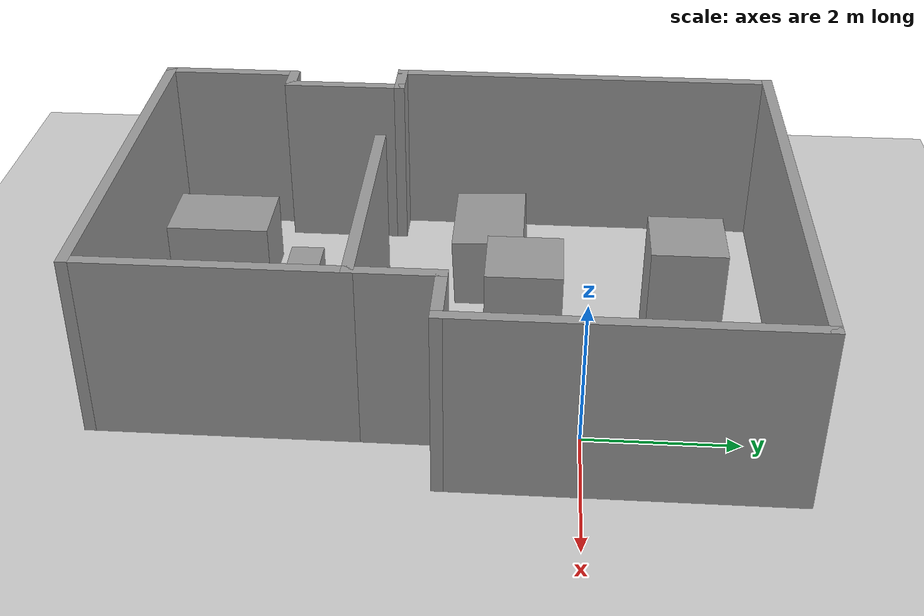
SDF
<sdf version="1.7">
 <world name="default">
  <light name="sun" type="directional">
   <pose>0 0 10 0 -0 0</pose>
   <diffuse>0.8 0.8 0.8 1</diffuse>
   <specular>0.1 0.1 0.1 1</specular>
   <attenuation>
    <range>1000</range>
    <constant>0.9</constant>
    <linear>0.01</linear>
    <quadratic>0.001</quadratic>
   </attenuation>
   <direction>-0.5 0.5 -1</direction>
   <spot><inner_angle>0</inner_angle><outer_angle>0</outer_angle><falloff>0</falloff></spot>
  </light>
  <model name="ground_plane">
   <static>1</static>
   <link name="link">
    <collision name="collision">
     <geometry><plane><normal>0 0 1</normal><size>100 100</size></plane></geometry>
     <surface><friction><ode><mu>100</mu><mu2>50</mu2></ode></friction></surface>
    </collision>
    <visual name="visual">
     <cast_shadows>0</cast_shadows>
     <geometry><plane><normal>0 0 1</normal><size>100 100</size></plane></geometry>
     <material>
      <script><uri>file://media/materials/scripts/gazebo.material</uri><name>Gazebo/Grey</name></script>
     </material>
    </visual>
   </link>
  </model>
  <gravity>0 0 -9.8</gravity>
  <magnetic_field>6e-06 2.3e-05 -4.2e-05</magnetic_field>
  <atmosphere type="adiabatic"/>
  <physics name="default_physics" default="0" type="ode">
   <max_step_size>0.001</max_step_size>
   <real_time_factor>1</real_time_factor>
   <real_time_update_rate>1000</real_time_update_rate>
  </physics>
  <scene><ambient>0.4 0.4 0.4 1</ambient><background>0.7 0.7 0.7 1</background><shadows>1</shadows></scene>
  <spherical_coordinates>
   <surface_model>EARTH_WGS84</surface_model>
   <latitude_deg>0</latitude_deg>
   <longitude_deg>0</longitude_deg>
   <elevation>0</elevation>
   <heading_deg>0</heading_deg>
  </spherical_coordinates>
  <model name="unit_box_2">
   <pose>-3.70594 -1.29835 0.5 3.13863 0.045176 -1.57067</pose>
   <link name="link">
    <inertial>
     <mass>1</mass>
     <inertia>
      <ixx>0.166667</ixx>
      <ixy>0</ixy>
      <ixz>0</ixz>
      <iyy>0.166667</iyy>
      <iyz>0</iyz>
      <izz>0.166667</izz>
     </inertia>
    </inertial>
    <collision name="collision"><geometry><box><size>1 1.44085 1</size></box></geometry></collision>
    <visual name="visual">
     <geometry><box><size>1 1.44085 1</size></box></geometry>
     <material>
      <script><name>Gazebo/Grey</name><uri>file://media/materials/scripts/gazebo.material</uri></script>
     </material>
    </visual>
   </link>
  </model>
  <model name="unit_box_1_clone">
   <pose>-2.2193 -3.79942 0.499997 0 7e-06 0</pose>
   <link name="link">
    <inertial>
     <mass>1</mass>
     <inertia>
      <ixx>0.166667</ixx>
      <ixy>0</ixy>
      <ixz>0</ixz>
      <iyy>0.166667</iyy>
      <iyz>0</iyz>
      <izz>0.166667</izz>
     </inertia>
    </inertial>
    <collision name="collision"><geometry><box><size>1 0.451115 1</size></box></geometry></collision>
    <visual name="visual">
     <geometry><box><size>1 0.451115 1</size></box></geometry>
     <material>
      <script><name>Gazebo/Grey</name><uri>file://media/materials/scripts/gazebo.material</uri></script>
     </material>
    </visual>
   </link>
  </model>
  <model name="unit_box_0_clone">
   <pose>-2.26801 1.35008 0.827871 -5e-06 2e-06 0.000177</pose>
   <link name="link">
    <inertial>
     <mass>1</mass>
     <inertia>
      <ixx>0.166667</ixx>
      <ixy>0</ixy>
      <ixz>0</ixz>
      <iyy>0.166667</iyy>
      <iyz>0</iyz>
      <izz>0.166667</izz>
     </inertia>
    </inertial>
    <collision name="collision"><geometry><box><size>1 1 1.65575</size></box></geometry></collision>
    <visual name="visual">
     <geometry><box><size>1 1 1.65575</size></box></geometry>
     <material>
      <script><name>Gazebo/Grey</name><uri>file://media/materials/scripts/gazebo.material</uri></script>
     </material>
    </visual>
   </link>
  </model>
  <model name="unit_box_2_clone">
   <pose>-3.60355 -5.17272 0.5 0 -0 0</pose>
   <link name="link">
    <inertial>
     <mass>1</mass>
     <inertia>
      <ixx>0.166667</ixx>
      <ixy>0</ixy>
      <ixz>0</ixz>
      <iyy>0.166667</iyy>
      <iyz>0</iyz>
      <izz>0.166667</izz>
     </inertia>
    </inertial>
    <collision name="collision"><geometry><box><size>1 1.44085 1</size></box></geometry></collision>
    <visual name="visual">
     <geometry><box><size>1 1.44085 1</size></box></geometry>
     <material>
      <script><name>Gazebo/Grey</name><uri>file://media/materials/scripts/gazebo.material</uri></script>
     </material>
    </visual>
   </link>
  </model>
  <model name="Untitled_0">
   <pose>-2.1616 -1.758 0 0 -0 0</pose>
   <link name="Wall_14">
    <collision name="Wall_14_Collision">
     <geometry><box><size>5.5 0.15 2.5</size></box></geometry>
     <pose>0 0 1.25 0 -0 0</pose>
    </collision>
    <visual name="Wall_14_Visual">
     <pose>0 0 1.25 0 -0 0</pose>
     <geometry><box><size>5.5 0.15 2.5</size></box></geometry>
     <material>
      <script><uri>file://media/materials/scripts/gazebo.material</uri><name>Gazebo/Grey</name></script>
      <ambient>1 1 1 1</ambient>
     </material>
     <meta><layer>0</layer></meta>
    </visual>
    <pose>-3.175 1.725 0 0 -0 1.5708</pose>
   </link>
   <link name="Wall_15">
    <collision name="Wall_15_Collision">
     <geometry><box><size>6.5 0.15 2.5</size></box></geometry>
     <pose>0 0 1.25 0 -0 0</pose>
    </collision>
    <visual name="Wall_15_Visual">
     <pose>0 0 1.25 0 -0 0</pose>
     <geometry><box><size>6.5 0.15 2.5</size></box></geometry>
     <material>
      <script><uri>file://media/materials/scripts/gazebo.material</uri><name>Gazebo/Grey</name></script>
      <ambient>1 1 1 1</ambient>
     </material>
     <meta><layer>0</layer></meta>
    </visual>
    <pose>-0 4.4 0 0 -0 0</pose>
   </link>
   <link name="Wall_16">
    <collision name="Wall_16_Collision">
     <geometry><box><size>4.5 0.15 2.5</size></box></geometry>
     <pose>0 0 1.25 0 -0 0</pose>
    </collision>
    <visual name="Wall_16_Visual">
     <pose>0 0 1.25 0 -0 0</pose>
     <geometry><box><size>4.5 0.15 2.5</size></box></geometry>
     <material>
      <script><uri>file://media/materials/scripts/gazebo.material</uri><name>Gazebo/Grey</name></script>
      <ambient>1 1 1 1</ambient>
     </material>
     <meta><layer>0</layer></meta>
    </visual>
    <pose>3.175 2.225 0 0 -0 -1.5708</pose>
   </link>
   <link name="Wall_17">
    <collision name="Wall_17_Collision">
     <geometry><box><size>1 0.15 2.5</size></box></geometry>
     <pose>0 0 1.25 0 -0 0</pose>
    </collision>
    <visual name="Wall_17_Visual">
     <pose>0 0 1.25 0 -0 0</pose>
     <geometry><box><size>1 0.15 2.5</size></box></geometry>
     <material>
      <script><uri>file://media/materials/scripts/gazebo.material</uri><name>Gazebo/Grey</name></script>
      <ambient>1 1 1 1</ambient>
     </material>
     <meta><layer>0</layer></meta>
    </visual>
    <pose>2.75 0.05 0 0 -0 3.14159</pose>
   </link>
   <link name="Wall_18">
    <collision name="Wall_18_Collision">
     <geometry><box><size>1.25 0.15 2.5</size></box></geometry>
     <pose>0 0 1.25 0 -0 0</pose>
    </collision>
    <visual name="Wall_18_Visual">
     <pose>0 0 1.25 0 -0 0</pose>
     <geometry><box><size>1.25 0.15 2.5</size></box></geometry>
     <material>
      <script><uri>file://media/materials/scripts/gazebo.material</uri><name>Gazebo/Grey</name></script>
      <ambient>1 1 1 1</ambient>
     </material>
     <meta><layer>0</layer></meta>
    </visual>
    <pose>2.325 -0.5 0 0 -0 -1.5708</pose>
   </link>
   <link name="Wall_19">
    <collision name="Wall_19_Collision">
     <geometry><box><size>3.5 0.15 2.5</size></box></geometry>
     <pose>0 0 1.25 0 -0 0</pose>
    </collision>
    <visual name="Wall_19_Visual">
     <pose>0 0 1.25 0 -0 0</pose>
     <geometry><box><size>3.5 0.15 2.5</size></box></geometry>
     <material>
      <script><uri>file://media/materials/scripts/gazebo.material</uri><name>Gazebo/Grey</name></script>
      <ambient>1 1 1 1</ambient>
     </material>
     <meta><layer>0</layer></meta>
    </visual>
    <pose>0.65 -1.05 0 0 -0 3.14159</pose>
   </link>
   <link name="Wall_21">
    <collision name="Wall_21_Collision">
     <geometry><box><size>3.5 0.15 2.5</size></box></geometry>
     <pose>0 0 1.25 0 -0 0</pose>
    </collision>
    <visual name="Wall_21_Visual">
     <pose>0 0 1.25 0 -0 0</pose>
     <geometry><box><size>3.5 0.15 2.5</size></box></geometry>
     <material>
      <script><uri>file://media/materials/scripts/gazebo.material</uri><name>Gazebo/Grey</name></script>
      <ambient>1 1 1 1</ambient>
     </material>
     <meta><layer>0</layer></meta>
    </visual>
    <pose>2.325 -2.725 0 0 -0 -1.5708</pose>
   </link>
   <link name="Wall_26">
    <collision name="Wall_26_Collision">
     <geometry><box><size>5.5 0.15 2.5</size></box></geometry>
     <pose>0 0 1.25 0 -0 0</pose>
    </collision>
    <visual name="Wall_26_Visual">
     <pose>0 0 1.25 0 -0 0</pose>
     <geometry><box><size>5.5 0.15 2.5</size></box></geometry>
     <material>
      <script><uri>file://media/materials/scripts/gazebo.material</uri><name>Gazebo/Grey</name></script>
      <ambient>1 1 1 1</ambient>
     </material>
     <meta><layer>0</layer></meta>
    </visual>
    <pose>-0.35 -4.4 0 0 -0 3.14159</pose>
   </link>
   <link name="Wall_27">
    <collision name="Wall_27_Collision">
     <geometry><box><size>2 0.15 2.5</size></box></geometry>
     <pose>0 0 1.25 0 -0 0</pose>
    </collision>
    <visual name="Wall_27_Visual">
     <pose>0 0 1.25 0 -0 0</pose>
     <geometry><box><size>2 0.15 2.5</size></box></geometry>
     <material>
      <script><uri>file://media/materials/scripts/gazebo.material</uri><name>Gazebo/Grey</name></script>
      <ambient>1 1 1 1</ambient>
     </material>
     <meta><layer>0</layer></meta>
    </visual>
    <pose>-3.025 -3.475 0 0 -0 1.5708</pose>
   </link>
   <link name="Wall_28">
    <collision name="Wall_28_Collision">
     <geometry><box><size>0.5 0.15 2.5</size></box></geometry>
     <pose>0 0 1.25 0 -0 0</pose>
    </collision>
    <visual name="Wall_28_Visual">
     <pose>0 0 1.25 0 -0 0</pose>
     <geometry><box><size>0.5 0.15 2.5</size></box></geometry>
     <material>
      <script><uri>file://media/materials/scripts/gazebo.material</uri><name>Gazebo/Grey</name></script>
      <ambient>1 1 1 1</ambient>
     </material>
     <meta><layer>0</layer></meta>
    </visual>
    <pose>-2.85 -2.55 0 0 -0 0</pose>
   </link>
   <link name="Wall_29">
    <collision name="Wall_29_Collision">
     <geometry><box><size>1.75 0.15 2.5</size></box></geometry>
     <pose>0 0 1.25 0 -0 0</pose>
    </collision>
    <visual name="Wall_29_Visual">
     <pose>0 0 1.25 0 -0 0</pose>
     <geometry><box><size>1.75 0.15 2.5</size></box></geometry>
     <material>
      <script><uri>file://media/materials/scripts/gazebo.material</uri><name>Gazebo/Grey</name></script>
      <ambient>1 1 1 1</ambient>
     </material>
     <meta><layer>0</layer></meta>
    </visual>
    <pose>-2.675 -1.75 0 0 -0 1.5708</pose>
   </link>
   <link name="Wall_30">
    <collision name="Wall_30_Collision">
     <geometry><box><size>0.65 0.15 2.5</size></box></geometry>
     <pose>0 0 1.25 0 -0 0</pose>
    </collision>
    <visual name="Wall_30_Visual">
     <pose>0 0 1.25 0 -0 0</pose>
     <geometry><box><size>0.65 0.15 2.5</size></box></geometry>
     <material>
      <script><uri>file://media/materials/scripts/gazebo.material</uri><name>Gazebo/Grey</name></script>
      <ambient>1 1 1 1</ambient>
     </material>
     <meta><layer>0</layer></meta>
    </visual>
    <pose>-2.925 -0.95 0 0 -0 -3.14159</pose>
   </link>
   <static>1</static>
  </model>
  <model name="unit_box_1_clone_0">
   <pose>-0.477589 0.606745 0.499997 0 7e-06 0</pose>
   <link name="link">
    <inertial>
     <mass>1</mass>
     <inertia>
      <ixx>0.166667</ixx>
      <ixy>0</ixy>
      <ixz>0</ixz>
      <iyy>0.166667</iyy>
      <iyz>0</iyz>
      <izz>0.166667</izz>
     </inertia>
    </inertial>
    <collision name="collision"><geometry><box><size>1 0.451115 1</size></box></geometry></collision>
    <visual name="visual">
     <geometry><box><size>1 0.451115 1</size></box></geometry>
     <material>
      <script><name>Gazebo/Grey</name><uri>file://media/materials/scripts/gazebo.material</uri></script>
     </material>
    </visual>
   </link>
  </model>
  <model name="unit_box_0_clone_0">
   <pose>-1.60611 -0.777211 0.827871 -5e-06 2e-06 0.000177</pose>
   <link name="link">
    <inertial>
     <mass>1</mass>
     <inertia>
      <ixx>0.166667</ixx>
      <ixy>0</ixy>
      <ixz>0</ixz>
      <iyy>0.166667</iyy>
      <iyz>0</iyz>
      <izz>0.166667</izz>
     </inertia>
    </inertial>
    <collision name="collision"><geometry><box><size>1 1 1.65575</size></box></geometry></collision>
    <visual name="visual">
     <geometry><box><size>1 1 1.65575</size></box></geometry>
     <material>
      <script><name>Gazebo/Grey</name><uri>file://media/materials/scripts/gazebo.material</uri></script>
     </material>
    </visual>
   </link>
  </model>
 </world>
</sdf>
